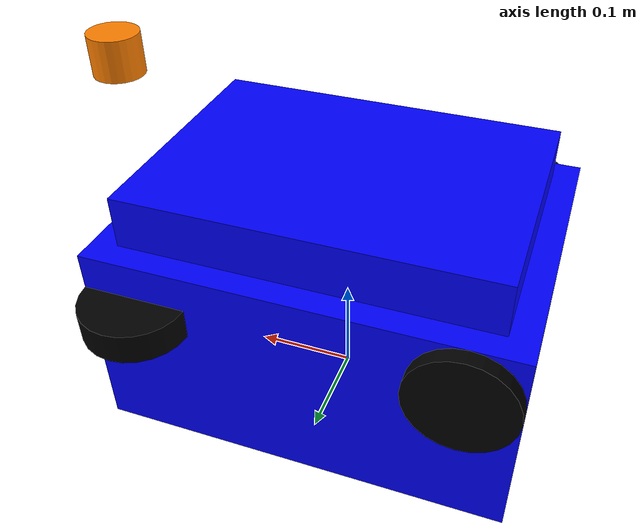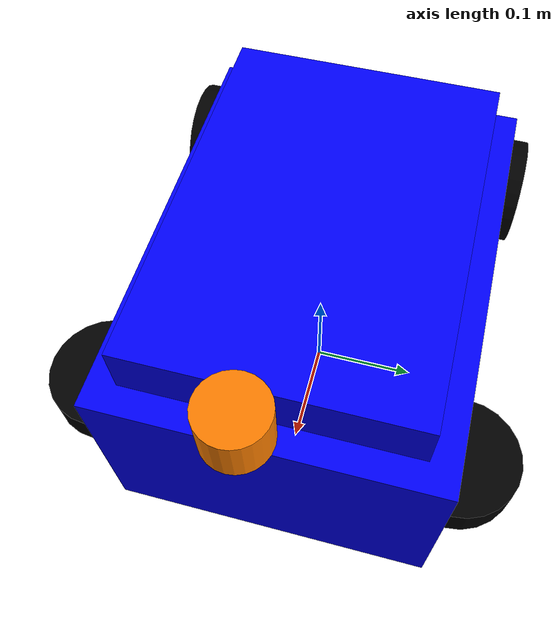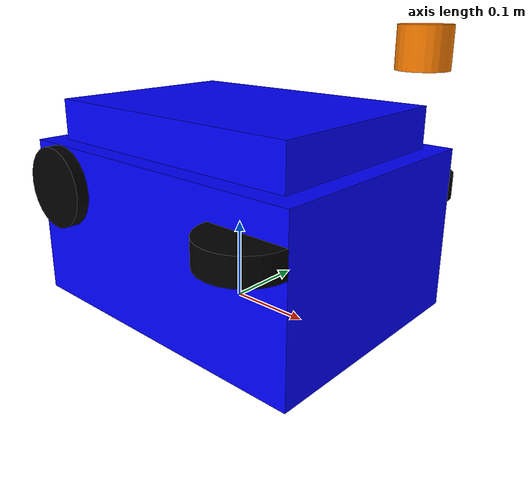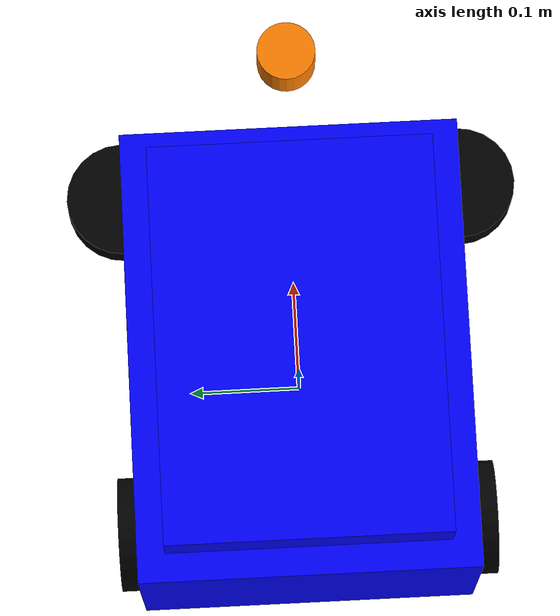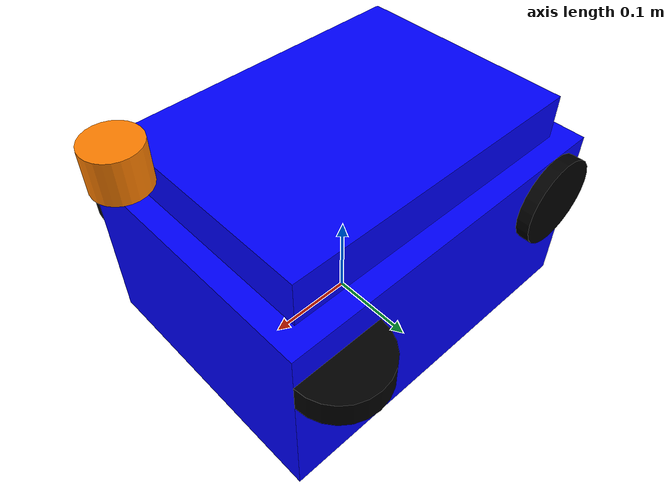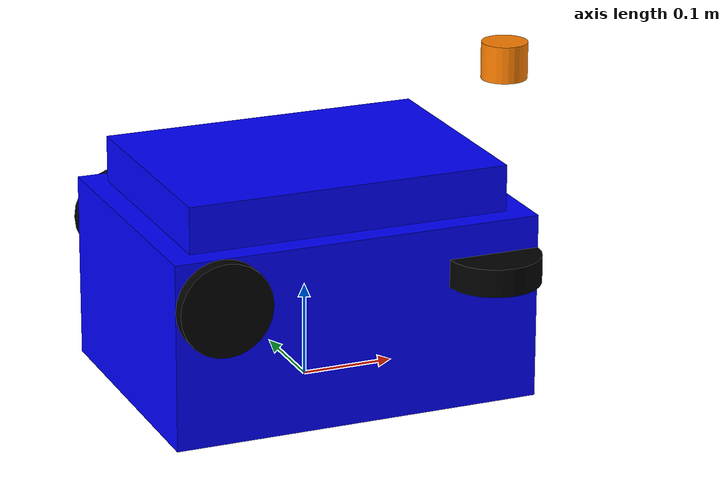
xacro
<?xml version="1.0"?>
<robot xmlns:xacro="http://www.ros.org/wiki/xacro"  name="robot">

    <xacro:arg name="use_ros2_control"              default="false"/>
    <xacro:arg name="use_ros2_control_gz_sim"       default="false"/>

    <!-- Robot_frames -->
    <xacro:include filename = "robot_main.xacro" />

</robot>

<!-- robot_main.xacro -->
<robot xmlns:xacro="http://www.ros.org/wiki/xacro" name="nav2_odin">

    <xacro:property name="lidar_offset_x" value="0.230"/>
    <xacro:property name="lidar_offset_z" value="0.098"/>

    <xacro:include filename="lidar.xacro" />

    <joint name="base_footprint_to_base_link" type="fixed">
        <parent link="base_footprint"/>
        <child link="base_link"/>
        <origin xyz="0 0 0.1" rpy="0 0 0"/>
    </joint>

    <material name="blue">
        <color rgba="0 0 1 1"/>
    </material>

    <material name="black">
        <color rgba="0 0 0 1"/>
    </material>

    <material name="orange">
        <color rgba="1 0.5 0 1"/>
    </material>

    <link name="base_footprint"></link>

    <!-- Main robot base -->
    <link name="base_link">
        <visual>
            <geometry>
                <box size="0.4 0.3 0.2"/>
            </geometry>
            <material name="blue"/>
        </visual>
        <collision>
            <geometry>
                <box size="0.4 0.3 0.2"/>
            </geometry>
        </collision>
    </link>

    <!-- Chassis link -->
    <link name="chassis">
        <visual>
            <geometry>
                <box size="0.35 0.25 0.05"/>
            </geometry>
            <material name="blue"/>
        </visual>
        <collision>
            <geometry>
                <box size="0.35 0.25 0.05"/>
            </geometry>
        </collision>
    </link>

    <!-- Joint to connect base_link to chassis -->
    <joint name="base_link_to_chassis" type="fixed">
        <parent link="base_link"/>
        <child link="chassis"/>
        <origin xyz="0 0 0.125" rpy="0 0 0"/>
    </joint>

    <!-- Front left wheel (steered) -->
    <link name="front_left_wheel">
        <visual>
            <geometry>
                <cylinder radius="0.05" length="0.03"/>
            </geometry>
            <material name="black"/>
        </visual>
        <collision>
            <geometry>
                <cylinder radius="0.05" length="0.03"/>
            </geometry>
        </collision>
    </link>

    <joint name="front_left_steering_joint" type="continuous">
        <parent link="base_link"/>
        <child link="front_left_wheel"/>
        <origin xyz="0.15 0.15 0.05" rpy="0 0 0"/>
        <axis xyz="0 0 1"/>
    </joint>

    <!-- Front right wheel (steered) -->
    <link name="front_right_wheel">
        <visual>
            <geometry>
                <cylinder radius="0.05" length="0.03"/>
            </geometry>
            <material name="black"/>
        </visual>
        <collision>
            <geometry>
                <cylinder radius="0.05" length="0.03"/>
            </geometry>
        </collision>
    </link>

    <joint name="front_right_steering_joint" type="continuous">
        <parent link="base_link"/>
        <child link="front_right_wheel"/>
        <origin xyz="0.15 -0.15 0.05" rpy="0 0 0"/>
        <axis xyz="0 0 1"/>
    </joint>

    <!-- Rear left wheel (driven) -->
    <link name="rear_left_wheel">
        <visual>
            <geometry>
                <cylinder radius="0.05" length="0.03"/>
            </geometry>
            <material name="black"/>
        </visual>
        <collision>
            <geometry>
                <cylinder radius="0.05" length="0.03"/>
            </geometry>
        </collision>
    </link>

    <joint name="rear_left_wheel_joint" type="continuous">
        <parent link="base_link"/>
        <child link="rear_left_wheel"/>
        <origin xyz="-0.15 0.15 0.05" rpy="1.5708 0 0"/> <!-- Replaced pi/2 with 1.5708 -->
        <axis xyz="0 1 0"/>
    </joint>

    <!-- Rear right wheel (driven) -->
    <link name="rear_right_wheel">
        <visual>
            <geometry>
                <cylinder radius="0.05" length="0.03"/>
            </geometry>
            <material name="black"/>
        </visual>
        <collision>
            <geometry>
                <cylinder radius="0.05" length="0.03"/>
            </geometry>
        </collision>
    </link>

    <joint name="rear_right_wheel_joint" type="continuous">
        <parent link="base_link"/>
        <child link="rear_right_wheel"/>
        <origin xyz="-0.15 -0.15 0.05" rpy="1.5708 0 0"/> <!-- Replaced pi/2 with 1.5708 -->
        <axis xyz="0 1 0"/>
    </joint>

</robot>

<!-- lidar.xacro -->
<robot xmlns:xacro="http://www.ros.org/wiki/xacro" name="robot">

    <xacro:property name="lidar_radius"             value="0.025"/>
    <xacro:property name="lidar_thickness"          value="0.040"/>
    <xacro:property name="lidar_offset_x"           value="0.230"/>
    <xacro:property name="lidar_offset_z"           value="0.098"/>

    <!-- Lidar -->
    <joint name="lidar_joint" type="fixed">
        <parent link="chassis"/>
        <child link="lidar_frame"/>
        <origin xyz="${lidar_offset_x} 0.0 ${lidar_offset_z}" rpy="0 0 3.14159"/> <!-- Replaced pi with 3.14159 -->
    </joint>

    <link name="lidar_frame">
        <visual>
            <geometry>
                <cylinder radius="${lidar_radius}" length="${lidar_thickness}"/>
            </geometry>
            <material name="orange"/>
        </visual>
        <collision>
            <geometry>
                <cylinder radius="${lidar_radius}" length="${lidar_thickness}"/>
            </geometry>
        </collision>
    </link>

</robot>
